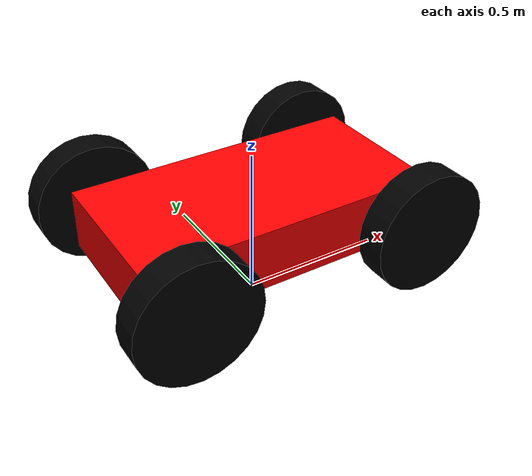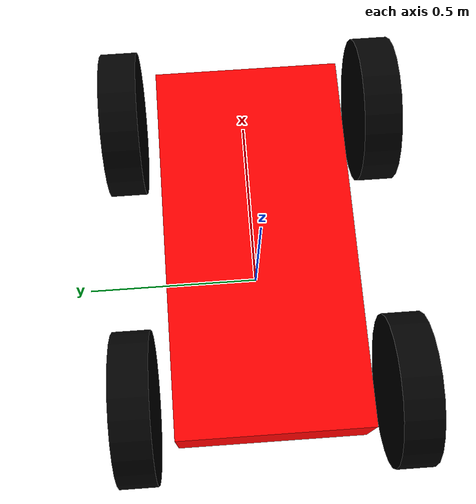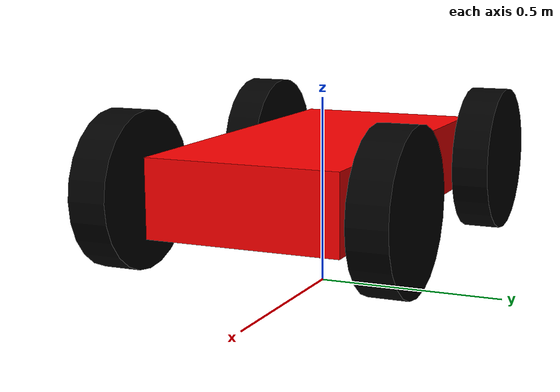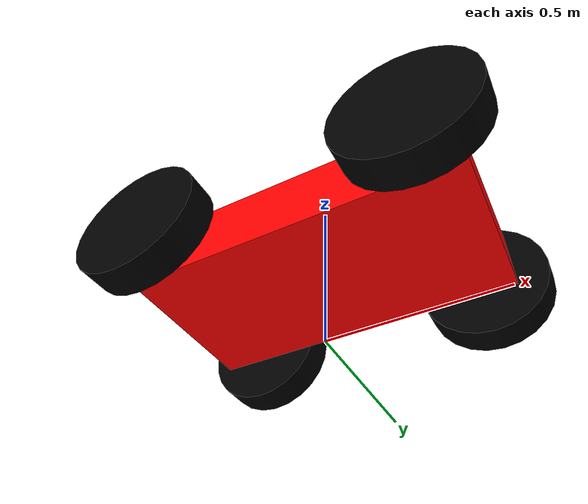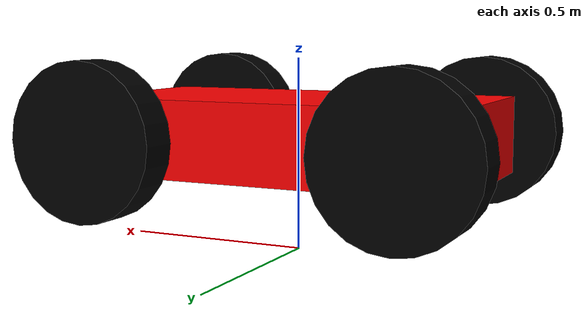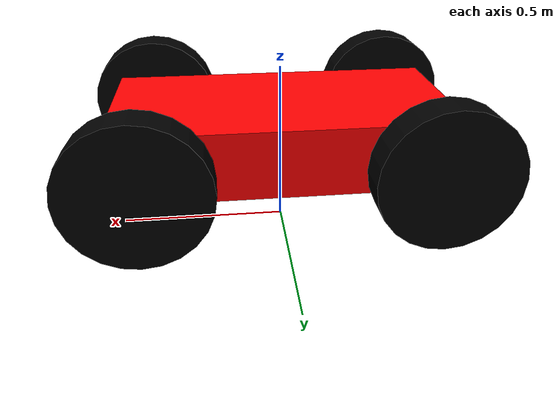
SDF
<?xml version="1.0" ?>
<sdf version="1.8">
  <model name="dog_bot">
    <self_collide>false</self_collide>

    <link name="chassis">
      <pose>0 0 0.3 0 0 0</pose>
      <inertial>
        <mass>20.0</mass>
        <inertia><ixx>0.1</ixx><iyy>0.1</iyy><izz>0.1</izz></inertia>
      </inertial>
      <visual name="v">
        <geometry><box><size>1.0 0.5 0.2</size></box></geometry>
        <material><ambient>1 0 0 1</ambient><diffuse>1 0 0 1</diffuse></material>
      </visual>
      <collision name="c">
        <geometry><box><size>1.0 0.5 0.2</size></box></geometry>
      </collision>
    </link>

    <!-- FRONT LEFT ASSEMBLY (Steer + Roll) -->
    <link name="fl_steer_hinge">
      <pose>0.4 0.35 0.3 0 0 0</pose>
      <inertial><mass>0.1</mass><inertia><ixx>0.01</ixx><iyy>0.01</iyy><izz>0.01</izz></inertia></inertial>
    </link>
    <joint name="fl_steer_j" type="revolute">
      <parent>chassis</parent><child>fl_steer_hinge</child>
      <axis><xyz>0 0 1</xyz><limit><lower>-0.6</lower><upper>0.6</upper><effort>1000</effort></limit></axis>
    </joint>
    <link name="fl_wheel">
      <pose>0.4 0.35 0.3 -1.5708 0 0</pose>
      <visual name="v"><geometry><cylinder><radius>0.2</radius><length>0.1</length></cylinder></geometry><material><ambient>0 0 0 1</ambient></material></visual>
      <collision name="c"><geometry><cylinder><radius>0.2</radius><length>0.1</length></cylinder></geometry></collision>
    </link>
    <joint name="fl_wheel_j" type="revolute">
      <parent>fl_steer_hinge</parent><child>fl_wheel</child>
      <axis><xyz>0 0 1</xyz><limit><effort>100000</effort></limit></axis>
    </joint>

    <!-- FRONT RIGHT ASSEMBLY (Steer + Roll) -->
    <link name="fr_steer_hinge">
      <pose>0.4 -0.35 0.3 0 0 0</pose>
      <inertial><mass>0.1</mass><inertia><ixx>0.01</ixx><iyy>0.01</iyy><izz>0.01</izz></inertia></inertial>
    </link>
    <joint name="fr_steer_j" type="revolute">
      <parent>chassis</parent><child>fr_steer_hinge</child>
      <axis><xyz>0 0 1</xyz><limit><lower>-0.6</lower><upper>0.6</upper><effort>1000</effort></limit></axis>
    </joint>
    <link name="fr_wheel">
      <pose>0.4 -0.35 0.3 -1.5708 0 0</pose>
      <visual name="v"><geometry><cylinder><radius>0.2</radius><length>0.1</length></cylinder></geometry><material><ambient>0 0 0 1</ambient></material></visual>
      <collision name="c"><geometry><cylinder><radius>0.2</radius><length>0.1</length></cylinder></geometry></collision>
    </link>
    <joint name="fr_wheel_j" type="revolute">
      <parent>fr_steer_hinge</parent><child>fr_wheel</child>
      <axis><xyz>0 0 1</xyz><limit><effort>100000</effort></limit></axis>
    </joint>

    <!-- REAR LEFT (Drive Only) -->
    <link name="rl_wheel">
      <pose>-0.4 0.35 0.3 -1.5708 0 0</pose>
      <visual name="v"><geometry><cylinder><radius>0.2</radius><length>0.1</length></cylinder></geometry><material><ambient>0 0 0 1</ambient></material></visual>
      <collision name="c"><geometry><cylinder><radius>0.2</radius><length>0.1</length></cylinder></geometry></collision>
    </link>
    <joint name="rl_drive_j" type="revolute">
      <parent>chassis</parent><child>rl_wheel</child>
      <axis><xyz>0 0 1</xyz><limit><lower>-1e16</lower><upper>1e16</upper><effort>100000</effort></limit></axis>
    </joint>

    <!-- REAR RIGHT (Drive Only) -->
    <link name="rr_wheel">
      <pose>-0.4 -0.35 0.3 -1.5708 0 0</pose>
      <visual name="v"><geometry><cylinder><radius>0.2</radius><length>0.1</length></cylinder></geometry><material><ambient>0 0 0 1</ambient></material></visual>
      <collision name="c"><geometry><cylinder><radius>0.2</radius><length>0.1</length></cylinder></geometry></collision>
    </link>
    <joint name="rr_drive_j" type="revolute">
      <parent>chassis</parent><child>rr_wheel</child>
      <axis><xyz>0 0 1</xyz><limit><lower>-1e16</lower><upper>1e16</upper><effort>100000</effort></limit></axis>
    </joint>
<!-- PLUGINS -->
    <!-- 1. Joint State Publisher -->
    <plugin filename="gz-sim-joint-state-publisher-system" name="gz::sim::systems::JointStatePublisher"/>

    <!-- 2. Ackermann Drive Controllers -->
<plugin
  filename="gz-sim-ackermann-steering-system"
  name="gz::sim::systems::AckermannSteering">
  <left_steering_joint>fl_steer_j</left_steering_joint>
  <right_steering_joint>fr_steer_j</right_steering_joint>
  <left_wheel_joint>rl_drive_j</left_wheel_joint>
  <right_wheel_joint>rr_drive_j</right_wheel_joint>
  <wheel_separation>0.7</wheel_separation>
  <wheelbase>0.8</wheelbase>
  <wheel_radius>0.2</wheel_radius>
  <min_velocity>-10.0</min_velocity>
  <max_velocity>10.0</max_velocity>
  <min_steering_angle>-0.6</min_steering_angle>
  <max_steering_angle>0.6</max_steering_angle>
<max_linear_acceleration>100</max_linear_acceleration>
<max_angular_acceleration>100</max_angular_acceleration>
  <!-- These define the internal Gazebo topics -->
  <topic>/model/dog_bot/cmd_vel</topic>
  <odom_topic>/model/dog_bot/odometry</odom_topic>
  <tf_topic>/model/dog_bot/tf</tf_topic>
  <frame_id>odom</frame_id>
  <child_frame_id>chassis</child_frame_id>
</plugin>

<plugin
  filename="gz-sim-odometry-publisher-system"
  name="gz::sim::systems::OdometryPublisher">
  <odom_frame>odom</odom_frame>
  <robot_base_frame>chassis</robot_base_frame>
  <odom_topic>/model/dog_bot/odometry</odom_topic>
</plugin>

  </model>
</sdf>
